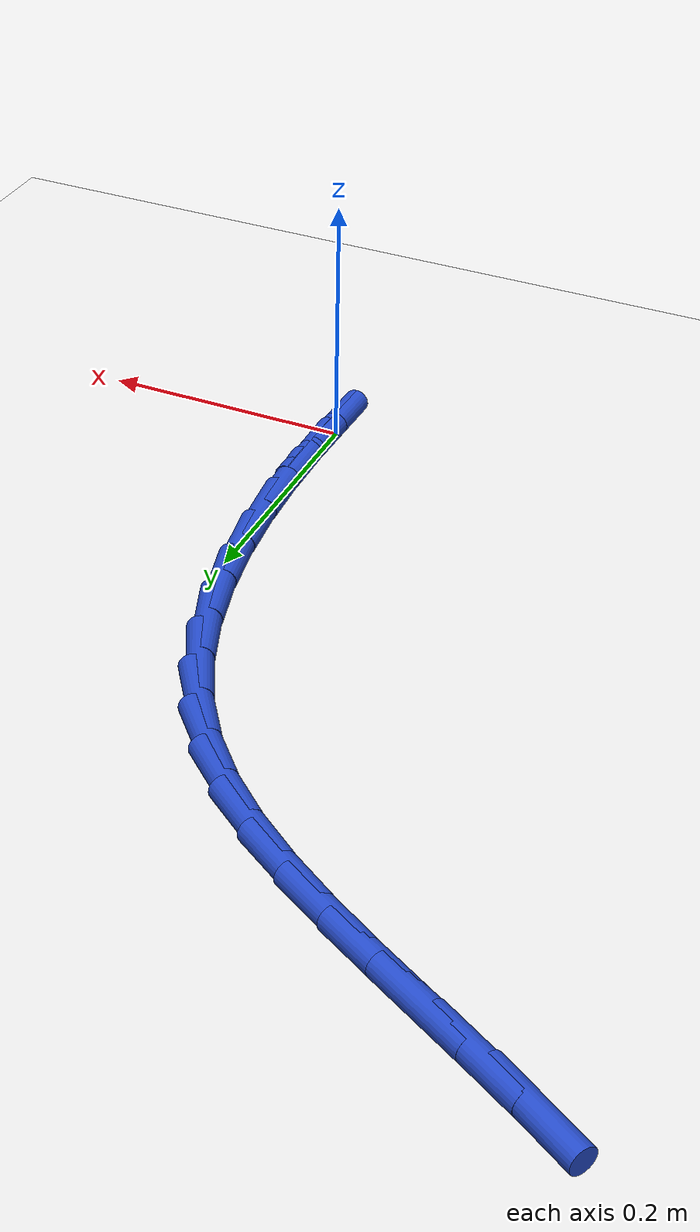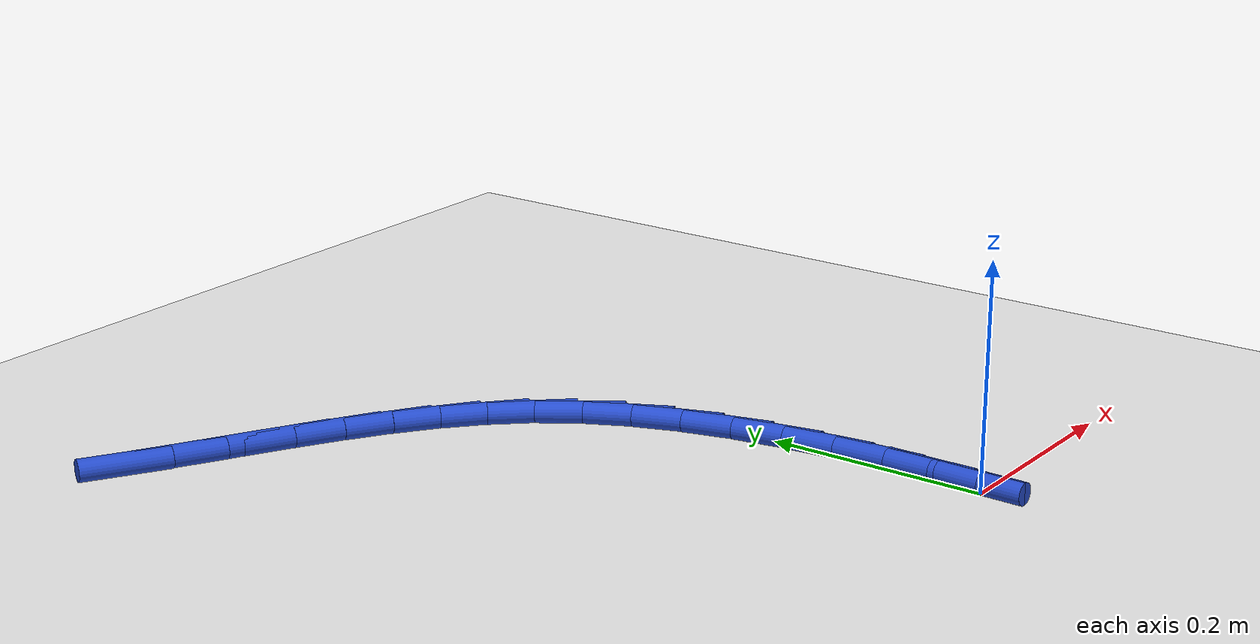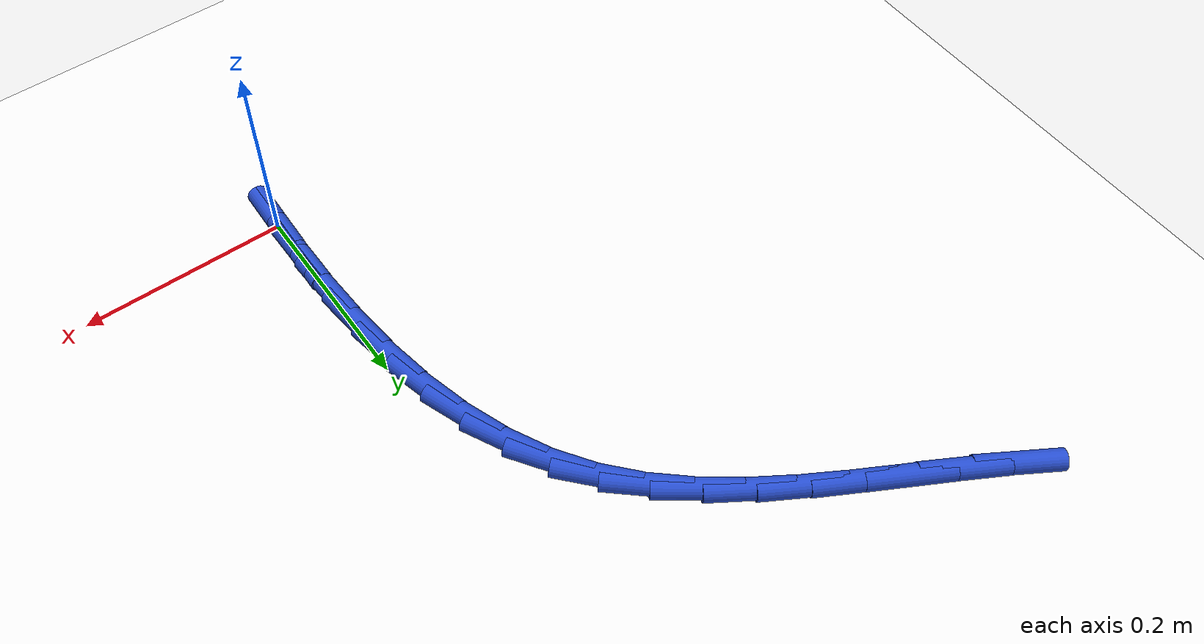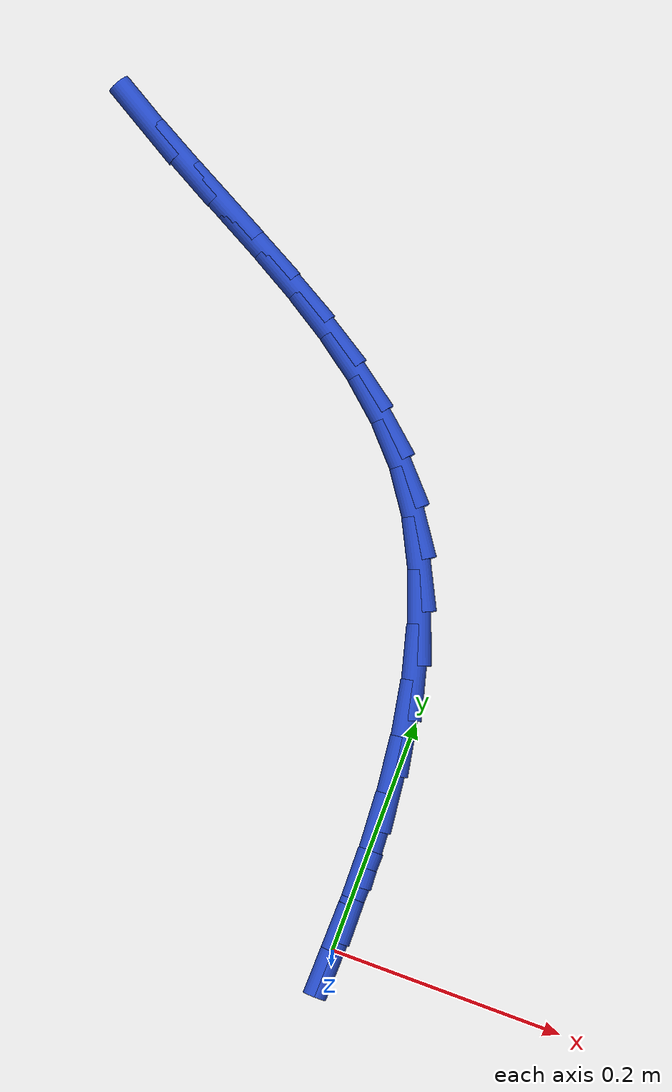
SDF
<sdf version="1.6">
 <world name="default">
  <model name="ground_plane">
   <static>1</static>
   <link name="link">
    <collision name="collision">
     <geometry><plane><normal>0 0 1</normal><size>100 100</size></plane></geometry>
     <surface><friction><ode><mu>100</mu><mu2>50</mu2></ode></friction></surface>
    </collision>
    <visual name="visual">
     <cast_shadows>0</cast_shadows>
     <geometry><plane><normal>0 0 1</normal><size>100 100</size></plane></geometry>
     <material>
      <script><uri>file://media/materials/scripts/gazebo.material</uri><name>Gazebo/WhiteGlow</name></script>
     </material>
    </visual>
   </link>
  </model>
  <model name="line">
   <link name="link_0">
    <pose>-1.0842021724855044e-17 5.551115123125783e-17 0.01 0 1.57 1.5490282287377952</pose>
    <collision name="collision">
     <geometry><cylinder><radius>0.01</radius><length>0.08</length></cylinder></geometry>
    </collision>
    <visual name="visual">
     <material>
      <script><name>Gazebo/Blue</name><uri>file://media/materials/scripts/gazebo.material</uri></script>
     </material>
     <geometry><cylinder><radius>0.01</radius><length>0.08</length></cylinder></geometry>
    </visual>
   </link>
   <link name="link_1">
    <pose>0.0010495427795255891 0.048207105472479146 0.01 0 1.57 -1.5560355234855865</pose>
    <collision name="collision">
     <geometry><cylinder><radius>0.01</radius><length>0.08</length></cylinder></geometry>
    </collision>
    <visual name="visual">
     <material>
      <script><name>Gazebo/Blue</name><uri>file://media/materials/scripts/gazebo.material</uri></script>
     </material>
     <geometry><cylinder><radius>0.01</radius><length>0.08</length></cylinder></geometry>
    </visual>
   </link>
   <link name="link_2">
    <pose>0.00033367665949480174 0.09670135832526107 0.01 0 1.57 -1.511313021172945</pose>
    <collision name="collision">
     <geometry><cylinder><radius>0.01</radius><length>0.08</length></cylinder></geometry>
    </collision>
    <visual name="visual">
     <material>
      <script><name>Gazebo/Blue</name><uri>file://media/materials/scripts/gazebo.material</uri></script>
     </material>
     <geometry><cylinder><radius>0.01</radius><length>0.08</length></cylinder></geometry>
    </visual>
   </link>
   <link name="link_3">
    <pose>-0.002537949901108395 0.1449205834363719 0.01 0 1.57 -1.4569491067449036</pose>
    <collision name="collision">
     <geometry><cylinder><radius>0.01</radius><length>0.08</length></cylinder></geometry>
    </collision>
    <visual name="visual">
     <material>
      <script><name>Gazebo/Blue</name><uri>file://media/materials/scripts/gazebo.material</uri></script>
     </material>
     <geometry><cylinder><radius>0.01</radius><length>0.08</length></cylinder></geometry>
    </visual>
   </link>
   <link name="link_4">
    <pose>-0.007955688443300017 0.1923026056838376 0.01 0 1.57 -1.391075005947091</pose>
    <collision name="collision">
     <geometry><cylinder><radius>0.01</radius><length>0.08</length></cylinder></geometry>
    </collision>
    <visual name="visual">
     <material>
      <script><name>Gazebo/Blue</name><uri>file://media/materials/scripts/gazebo.material</uri></script>
     </material>
     <geometry><cylinder><radius>0.01</radius><length>0.08</length></cylinder></geometry>
    </visual>
   </link>
   <link name="link_5">
    <pose>-0.016309890508096093 0.2382852499456845 0.01 0 1.57 -1.3114231536452396</pose>
    <collision name="collision">
     <geometry><cylinder><radius>0.01</radius><length>0.08</length></cylinder></geometry>
    </collision>
    <visual name="visual">
     <material>
      <script><name>Gazebo/Blue</name><uri>file://media/materials/scripts/gazebo.material</uri></script>
     </material>
     <geometry><cylinder><radius>0.01</radius><length>0.08</length></cylinder></geometry>
    </visual>
   </link>
   <link name="link_6">
    <pose>-0.027990907636512657 0.28230634109993863 0.01 0 1.57 -1.2154807211104535</pose>
    <collision name="collision">
     <geometry><cylinder><radius>0.01</radius><length>0.08</length></cylinder></geometry>
    </collision>
    <visual name="visual">
     <material>
      <script><name>Gazebo/Blue</name><uri>file://media/materials/scripts/gazebo.material</uri></script>
     </material>
     <geometry><cylinder><radius>0.01</radius><length>0.08</length></cylinder></geometry>
    </visual>
   </link>
   <link name="link_7">
    <pose>-0.0433890913695657 0.32380370402462577 0.01 0 1.57 -1.1009206993615657</pose>
    <collision name="collision">
     <geometry><cylinder><radius>0.01</radius><length>0.08</length></cylinder></geometry>
    </collision>
    <visual name="visual">
     <material>
      <script><name>Gazebo/Blue</name><uri>file://media/materials/scripts/gazebo.material</uri></script>
     </material>
     <geometry><cylinder><radius>0.01</radius><length>0.08</length></cylinder></geometry>
    </visual>
   </link>
   <link name="link_8">
    <pose>-0.06289479324827127 0.3622151635977724 0.01 0 1.57 -0.9669472272853215</pose>
    <collision name="collision">
     <geometry><cylinder><radius>0.01</radius><length>0.08</length></cylinder></geometry>
    </collision>
    <visual name="visual">
     <material>
      <script><name>Gazebo/Blue</name><uri>file://media/materials/scripts/gazebo.material</uri></script>
     </material>
     <geometry><cylinder><radius>0.01</radius><length>0.08</length></cylinder></geometry>
    </visual>
   </link>
   <link name="link_9">
    <pose>-0.08688518394548424 0.39699380557234987 0.01 0 1.57 -0.830806303257848</pose>
    <collision name="collision">
     <geometry><cylinder><radius>0.01</radius><length>0.08</length></cylinder></geometry>
    </collision>
    <visual name="visual">
     <material>
      <script><name>Gazebo/Blue</name><uri>file://media/materials/scripts/gazebo.material</uri></script>
     </material>
     <geometry><cylinder><radius>0.01</radius><length>0.08</length></cylinder></geometry>
    </visual>
   </link>
   <link name="link_10">
    <pose>-0.1152934890398682 0.42810671754720275 0.01 0 1.57 -0.7161407465516259</pose>
    <collision name="collision">
     <geometry><cylinder><radius>0.01</radius><length>0.08</length></cylinder></geometry>
    </collision>
    <visual name="visual">
     <material>
      <script><name>Gazebo/Blue</name><uri>file://media/materials/scripts/gazebo.material</uri></script>
     </material>
     <geometry><cylinder><radius>0.01</radius><length>0.08</length></cylinder></geometry>
    </visual>
   </link>
   <link name="link_11">
    <pose>-0.14751298136062538 0.45614614710951507 0.01 0 1.57 -0.6261447471100968</pose>
    <collision name="collision">
     <geometry><cylinder><radius>0.01</radius><length>0.08</length></cylinder></geometry>
    </collision>
    <visual name="visual">
     <material>
      <script><name>Gazebo/Blue</name><uri>file://media/materials/scripts/gazebo.material</uri></script>
     </material>
     <geometry><cylinder><radius>0.01</radius><length>0.08</length></cylinder></geometry>
    </visual>
   </link>
   <link name="link_12">
    <pose>-0.18290432032476264 0.4817421018178898 0.01 0 1.57 -0.5601164094464074</pose>
    <collision name="collision">
     <geometry><cylinder><radius>0.01</radius><length>0.08</length></cylinder></geometry>
    </collision>
    <visual name="visual">
     <material>
      <script><name>Gazebo/Blue</name><uri>file://media/materials/scripts/gazebo.material</uri></script>
     </material>
     <geometry><cylinder><radius>0.01</radius><length>0.08</length></cylinder></geometry>
    </visual>
   </link>
   <link name="link_13">
    <pose>-0.22082816534928712 0.5055245892309298 0.01 0 1.57 -0.5162341635020862</pose>
    <collision name="collision">
     <geometry><cylinder><radius>0.01</radius><length>0.08</length></cylinder></geometry>
    </collision>
    <visual name="visual">
     <material>
      <script><name>Gazebo/Blue</name><uri>file://media/materials/scripts/gazebo.material</uri></script>
     </material>
     <geometry><cylinder><radius>0.01</radius><length>0.08</length></cylinder></geometry>
    </visual>
   </link>
   <link name="link_14">
    <pose>-0.26064517585120595 0.5281236169072386 0.01 0 1.57 -0.49262879492609823</pose>
    <collision name="collision">
     <geometry><cylinder><radius>0.01</radius><length>0.08</length></cylinder></geometry>
    </collision>
    <visual name="visual">
     <material>
      <script><name>Gazebo/Blue</name><uri>file://media/materials/scripts/gazebo.material</uri></script>
     </material>
     <geometry><cylinder><radius>0.01</radius><length>0.08</length></cylinder></geometry>
    </visual>
   </link>
   <link name="link_15">
    <pose>-0.3017160112475259 0.5501691924054191 0.01 0 1.57 -0.48789989019928315</pose>
    <collision name="collision">
     <geometry><cylinder><radius>0.01</radius><length>0.08</length></cylinder></geometry>
    </collision>
    <visual name="visual">
     <material>
      <script><name>Gazebo/Blue</name><uri>file://media/materials/scripts/gazebo.material</uri></script>
     </material>
     <geometry><cylinder><radius>0.01</radius><length>0.08</length></cylinder></geometry>
    </visual>
   </link>
   <link name="link_16">
    <pose>-0.34340133095525444 0.5722913232840745 0.01 0 1.57 -0.5012835122891918</pose>
    <collision name="collision">
     <geometry><cylinder><radius>0.01</radius><length>0.08</length></cylinder></geometry>
    </collision>
    <visual name="visual">
     <material>
      <script><name>Gazebo/Blue</name><uri>file://media/materials/scripts/gazebo.material</uri></script>
     </material>
     <geometry><cylinder><radius>0.01</radius><length>0.08</length></cylinder></geometry>
    </visual>
   </link>
   <link name="link_17">
    <pose>-0.3850617943913983 0.595120017101808 0.01 0 1.57 -0.5326263015260709</pose>
    <collision name="collision">
     <geometry><cylinder><radius>0.01</radius><length>0.08</length></cylinder></geometry>
    </collision>
    <visual name="visual">
     <material>
      <script><name>Gazebo/Blue</name><uri>file://media/materials/scripts/gazebo.material</uri></script>
     </material>
     <geometry><cylinder><radius>0.01</radius><length>0.08</length></cylinder></geometry>
    </visual>
   </link>
   <link name="link_160">
    <pose>7.37257477290143e-18 2.636779683484747e-16 0.01 0 1.57 1.547394843837013</pose>
    <collision name="collision">
     <geometry><cylinder><radius>0.01</radius><length>0.08</length></cylinder></geometry>
    </collision>
    <visual name="visual">
     <material>
      <script><name>Gazebo/Blue</name><uri>file://media/materials/scripts/gazebo.material</uri></script>
     </material>
     <geometry><cylinder><radius>0.01</radius><length>0.08</length></cylinder></geometry>
    </visual>
   </link>
   <link name="link_161">
    <pose>0.00113064200674112 0.04830615266151399 0.01 0 1.57 1.5473948438370126</pose>
    <collision name="collision">
     <geometry><cylinder><radius>0.01</radius><length>0.08</length></cylinder></geometry>
    </collision>
    <visual name="visual">
     <material>
      <script><name>Gazebo/Blue</name><uri>file://media/materials/scripts/gazebo.material</uri></script>
     </material>
     <geometry><cylinder><radius>0.01</radius><length>0.08</length></cylinder></geometry>
    </visual>
   </link>
  </model>
 </world>
</sdf>
